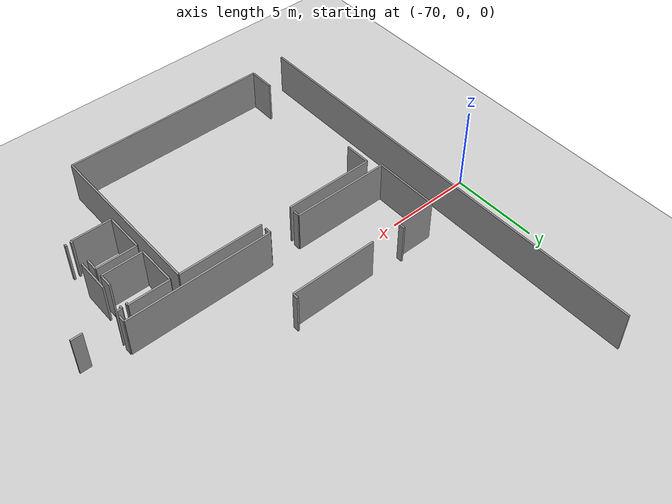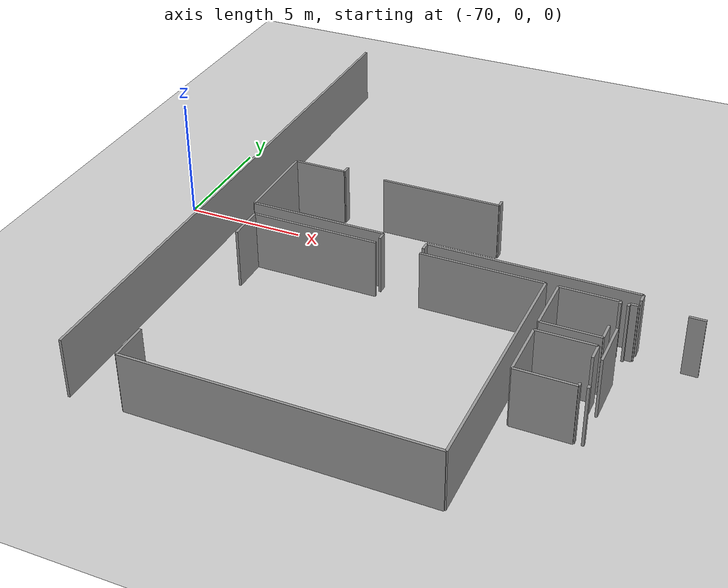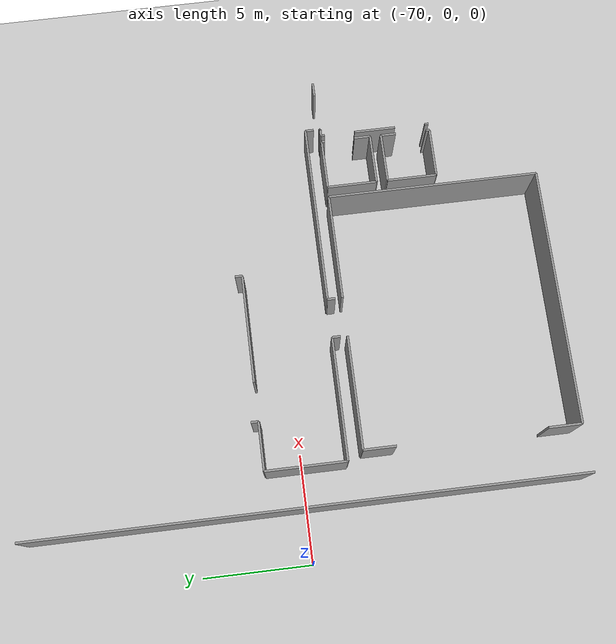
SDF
<sdf version="1.6">
 <world name="default">
  <model name="ground_plane">
   <static>1</static>
   <link name="link">
    <collision name="collision">
     <geometry><plane><normal>0 0 1</normal><size>100 100</size></plane></geometry>
     <surface><friction><ode><mu>100</mu><mu2>50</mu2></ode></friction></surface>
    </collision>
    <visual name="visual">
     <cast_shadows>0</cast_shadows>
     <geometry><plane><normal>0 0 1</normal><size>100 100</size></plane></geometry>
     <material>
      <script><uri>file://media/materials/scripts/gazebo.material</uri><name>Gazebo/Grey</name></script>
     </material>
    </visual>
   </link>
  </model>
  <model name="0510032198_A_40_1_106">
   <static>1</static>
   <link name="Wall_271">
    <collision name="Wall_271_Collision">
     <geometry><box><size>2.31815929563 0.1 2.5</size></box></geometry>
     <pose>1.15907964782 0 1.25 0 0 0</pose>
    </collision>
    <visual name="Wall_271_Visual">
     <pose>1.15907964782 0 1.25 0 0 0</pose>
     <geometry><box><size>2.31815929563 0.1 2.5</size></box></geometry>
     <material>
      <script><uri>file://media/materials/scripts/gazebo.material</uri><name>Gazebo/Grey</name></script>
      <ambient>1 1 1 1</ambient>
     </material>
    </visual>
    <pose>14.6627450482 -20.6023453481 0 0 0 1.57079632679</pose>
   </link>
   <link name="Wall_272">
    <collision name="Wall_272_Collision">
     <geometry><box><size>2.31193383222 0.1 2.5</size></box></geometry>
     <pose>1.15596691611 0 1.25 0 0 0</pose>
    </collision>
    <visual name="Wall_272_Visual">
     <pose>1.15596691611 0 1.25 0 0 0</pose>
     <geometry><box><size>2.31193383222 0.1 2.5</size></box></geometry>
     <material>
      <script><uri>file://media/materials/scripts/gazebo.material</uri><name>Gazebo/Grey</name></script>
      <ambient>1 1 1 1</ambient>
     </material>
    </visual>
    <pose>14.6627450482 -18.2841860524 0 0 0 0.0</pose>
   </link>
   <link name="Wall_273">
    <collision name="Wall_273_Collision">
     <geometry><box><size>0.707415924481 0.1 2.5</size></box></geometry>
     <pose>0.353707962241 0 1.25 0 0 0</pose>
    </collision>
    <visual name="Wall_273_Visual">
     <pose>0.353707962241 0 1.25 0 0 0</pose>
     <geometry><box><size>0.707415924481 0.1 2.5</size></box></geometry>
     <material>
      <script><uri>file://media/materials/scripts/gazebo.material</uri><name>Gazebo/Grey</name></script>
      <ambient>1 1 1 1</ambient>
     </material>
    </visual>
    <pose>16.9746788804 -18.2841860524 0 0 0 -1.57079632679</pose>
   </link>
   <link name="Wall_274">
    <collision name="Wall_274_Collision">
     <geometry><box><size>0.167071110038 0.1 2.5</size></box></geometry>
     <pose>0.0835355550191 0 1.25 0 0 0</pose>
    </collision>
    <visual name="Wall_274_Visual">
     <pose>0.0835355550191 0 1.25 0 0 0</pose>
     <geometry><box><size>0.167071110038 0.1 2.5</size></box></geometry>
     <material>
      <script><uri>file://media/materials/scripts/gazebo.material</uri><name>Gazebo/Grey</name></script>
      <ambient>1 1 1 1</ambient>
     </material>
    </visual>
    <pose>16.9746788804 -20.4519178239 0 0 0 -1.57079632679</pose>
   </link>
   <link name="Wall_275">
    <collision name="Wall_275_Collision">
     <geometry><box><size>2.31199373994 0.1 2.5</size></box></geometry>
     <pose>1.15599686997 0 1.25 0 0 0</pose>
    </collision>
    <visual name="Wall_275_Visual">
     <pose>1.15599686997 0 1.25 0 0 0</pose>
     <geometry><box><size>2.31199373994 0.1 2.5</size></box></geometry>
     <material>
      <script><uri>file://media/materials/scripts/gazebo.material</uri><name>Gazebo/Grey</name></script>
      <ambient>1 1 1 1</ambient>
     </material>
    </visual>
    <pose>16.9746788804 -20.6189889339 0 0 0 3.13439378911</pose>
   </link>
   <link name="Wall_276">
    <collision name="Wall_276_Collision">
     <geometry><box><size>2.32006504974 0.1 2.5</size></box></geometry>
     <pose>1.16003252487 0 1.25 0 0 0</pose>
    </collision>
    <visual name="Wall_276_Visual">
     <pose>1.16003252487 0 1.25 0 0 0</pose>
     <geometry><box><size>2.32006504974 0.1 2.5</size></box></geometry>
     <material>
      <script><uri>file://media/materials/scripts/gazebo.material</uri><name>Gazebo/Grey</name></script>
      <ambient>1 1 1 1</ambient>
     </material>
    </visual>
    <pose>14.6602040427 -17.7592143211 0 0 0 1.57079632679</pose>
   </link>
   <link name="Wall_277">
    <collision name="Wall_277_Collision">
     <geometry><box><size>2.33111842356 0.1 2.5</size></box></geometry>
     <pose>1.16555921178 0 1.25 0 0 0</pose>
    </collision>
    <visual name="Wall_277_Visual">
     <pose>1.16555921178 0 1.25 0 0 0</pose>
     <geometry><box><size>2.33111842356 0.1 2.5</size></box></geometry>
     <material>
      <script><uri>file://media/materials/scripts/gazebo.material</uri><name>Gazebo/Grey</name></script>
      <ambient>1 1 1 1</ambient>
     </material>
    </visual>
    <pose>14.6602040427 -15.4391492714 0 0 0 0.0</pose>
   </link>
   <link name="Wall_278">
    <collision name="Wall_278_Collision">
     <geometry><box><size>0.15474723348 0.1 2.5</size></box></geometry>
     <pose>0.0773736167401 0 1.25 0 0 0</pose>
    </collision>
    <visual name="Wall_278_Visual">
     <pose>0.0773736167401 0 1.25 0 0 0</pose>
     <geometry><box><size>0.15474723348 0.1 2.5</size></box></geometry>
     <material>
      <script><uri>file://media/materials/scripts/gazebo.material</uri><name>Gazebo/Grey</name></script>
      <ambient>1 1 1 1</ambient>
     </material>
    </visual>
    <pose>16.9913224663 -15.4391492714 0 0 0 -1.57079632679</pose>
   </link>
   <link name="Wall_279">
    <collision name="Wall_279_Collision">
     <geometry><box><size>0.751883520309 0.1 2.5</size></box></geometry>
     <pose>0.375941760154 0 1.25 0 0 0</pose>
    </collision>
    <visual name="Wall_279_Visual">
     <pose>0.375941760154 0 1.25 0 0 0</pose>
     <geometry><box><size>0.751883520309 0.1 2.5</size></box></geometry>
     <material>
      <script><uri>file://media/materials/scripts/gazebo.material</uri><name>Gazebo/Grey</name></script>
      <ambient>1 1 1 1</ambient>
     </material>
    </visual>
    <pose>16.9913224663 -17.0101259068 0 0 0 -1.57079632679</pose>
   </link>
   <link name="Wall_280">
    <collision name="Wall_280_Collision">
     <geometry><box><size>2.33112009928 0.1 2.5</size></box></geometry>
     <pose>1.16556004964 0 1.25 0 0 0</pose>
    </collision>
    <visual name="Wall_280_Visual">
     <pose>1.16556004964 0 1.25 0 0 0</pose>
     <geometry><box><size>2.33112009928 0.1 2.5</size></box></geometry>
     <material>
      <script><uri>file://media/materials/scripts/gazebo.material</uri><name>Gazebo/Grey</name></script>
      <ambient>1 1 1 1</ambient>
     </material>
    </visual>
    <pose>16.9913224663 -17.7620094271 0 0 0 3.1403936134</pose>
   </link>
   <link name="Wall_281">
    <collision name="Wall_281_Collision">
     <geometry><box><size>0.167198160312 0.1 2.5</size></box></geometry>
     <pose>0.083599080156 0 1.25 0 0 0</pose>
    </collision>
    <visual name="Wall_281_Visual">
     <pose>0.083599080156 0 1.25 0 0 0</pose>
     <geometry><box><size>0.167198160312 0.1 2.5</size></box></geometry>
     <material>
      <script><uri>file://media/materials/scripts/gazebo.material</uri><name>Gazebo/Grey</name></script>
      <ambient>1 1 1 1</ambient>
     </material>
    </visual>
    <pose>17.3014521846 -20.6135257721 0 0 0 1.57079632679</pose>
   </link>
   <link name="Wall_282">
    <collision name="Wall_282_Collision">
     <geometry><box><size>1.94285278685 0.1 2.5</size></box></geometry>
     <pose>0.971426393424 0 1.25 0 0 0</pose>
    </collision>
    <visual name="Wall_282_Visual">
     <pose>0.971426393424 0 1.25 0 0 0</pose>
     <geometry><box><size>1.94285278685 0.1 2.5</size></box></geometry>
     <material>
      <script><uri>file://media/materials/scripts/gazebo.material</uri><name>Gazebo/Grey</name></script>
      <ambient>1 1 1 1</ambient>
     </material>
    </visual>
    <pose>17.3014521846 -19.0030365015 0 0 0 1.57079632679</pose>
   </link>
   <link name="Wall_283">
    <collision name="Wall_283_Collision">
     <geometry><box><size>0.167071110038 0.1 2.5</size></box></geometry>
     <pose>0.0835355550191 0 1.25 0 0 0</pose>
    </collision>
    <visual name="Wall_283_Visual">
     <pose>0.0835355550191 0 1.25 0 0 0</pose>
     <geometry><box><size>0.167071110038 0.1 2.5</size></box></geometry>
     <material>
      <script><uri>file://media/materials/scripts/gazebo.material</uri><name>Gazebo/Grey</name></script>
      <ambient>1 1 1 1</ambient>
     </material>
    </visual>
    <pose>17.3014521846 -15.6179090066 0 0 0 1.57079632679</pose>
   </link>
   <link name="Wall_284">
    <collision name="Wall_284_Collision">
     <geometry><box><size>0.321945393792 0.1 2.5</size></box></geometry>
     <pose>0.160972696896 0 1.25 0 0 0</pose>
    </collision>
    <visual name="Wall_284_Visual">
     <pose>0.160972696896 0 1.25 0 0 0</pose>
     <geometry><box><size>0.321945393792 0.1 2.5</size></box></geometry>
     <material>
      <script><uri>file://media/materials/scripts/gazebo.material</uri><name>Gazebo/Grey</name></script>
      <ambient>1 1 1 1</ambient>
     </material>
    </visual>
    <pose>17.3014521846 -15.4508378966 0 0 0 0.0</pose>
   </link>
   <link name="Wall_285">
    <collision name="Wall_285_Collision">
     <geometry><box><size>0.0653038407298 0.1 2.5</size></box></geometry>
     <pose>0.0326519203649 0 1.25 0 0 0</pose>
    </collision>
    <visual name="Wall_285_Visual">
     <pose>0.0326519203649 0 1.25 0 0 0</pose>
     <geometry><box><size>0.0653038407298 0.1 2.5</size></box></geometry>
     <material>
      <script><uri>file://media/materials/scripts/gazebo.material</uri><name>Gazebo/Grey</name></script>
      <ambient>1 1 1 1</ambient>
     </material>
    </visual>
    <pose>17.6233975784 -15.4508378966 0 0 0 1.57079632679</pose>
   </link>
   <link name="Wall_286">
    <collision name="Wall_286_Collision">
     <geometry><box><size>0.638681726359 0.1 2.5</size></box></geometry>
     <pose>0.31934086318 0 1.25 0 0 0</pose>
    </collision>
    <visual name="Wall_286_Visual">
     <pose>0.31934086318 0 1.25 0 0 0</pose>
     <geometry><box><size>0.638681726359 0.1 2.5</size></box></geometry>
     <material>
      <script><uri>file://media/materials/scripts/gazebo.material</uri><name>Gazebo/Grey</name></script>
      <ambient>1 1 1 1</ambient>
     </material>
    </visual>
    <pose>19.4129006848 -15.3855340558 0 0 0 0.0</pose>
   </link>
   <link name="Wall_303">
    <collision name="Wall_303_Collision">
     <geometry><box><size>1.52460328552 0.1 2.5</size></box></geometry>
     <pose>0.76230164276 0 1.25 0 0 0</pose>
    </collision>
    <visual name="Wall_303_Visual">
     <pose>0.76230164276 0 1.25 0 0 0</pose>
     <geometry><box><size>1.52460328552 0.1 2.5</size></box></geometry>
     <material>
      <script><uri>file://media/materials/scripts/gazebo.material</uri><name>Gazebo/Grey</name></script>
      <ambient>1 1 1 1</ambient>
     </material>
    </visual>
    <pose>2.17942039665 -25.2485738607 0 0 0 1.57079632679</pose>
   </link>
   <link name="Wall_304">
    <collision name="Wall_304_Collision">
     <geometry><box><size>1.49144316406 0.1 2.5</size></box></geometry>
     <pose>0.74572158203 0 1.25 0 0 0</pose>
    </collision>
    <visual name="Wall_304_Visual">
     <pose>0.74572158203 0 1.25 0 0 0</pose>
     <geometry><box><size>1.49144316406 0.1 2.5</size></box></geometry>
     <material>
      <script><uri>file://media/materials/scripts/gazebo.material</uri><name>Gazebo/Grey</name></script>
      <ambient>1 1 1 1</ambient>
     </material>
    </visual>
    <pose>2.17942039665 -16.9195390616 0 0 0 1.57079632679</pose>
   </link>
   <link name="Wall_305">
    <collision name="Wall_305_Collision">
     <geometry><box><size>5.21897114688 0.1 2.5</size></box></geometry>
     <pose>2.60948557344 0 1.25 0 0 0</pose>
    </collision>
    <visual name="Wall_305_Visual">
     <pose>2.60948557344 0 1.25 0 0 0</pose>
     <geometry><box><size>5.21897114688 0.1 2.5</size></box></geometry>
     <material>
      <script><uri>file://media/materials/scripts/gazebo.material</uri><name>Gazebo/Grey</name></script>
      <ambient>1 1 1 1</ambient>
     </material>
    </visual>
    <pose>2.17942039665 -15.4280958975 0 0 0 0.0</pose>
   </link>
   <link name="Wall_306">
    <collision name="Wall_306_Collision">
     <geometry><box><size>4.96055088999 0.1 2.5</size></box></geometry>
     <pose>2.48027544499 0 1.25 0 0 0</pose>
    </collision>
    <visual name="Wall_306_Visual">
     <pose>2.48027544499 0 1.25 0 0 0</pose>
     <geometry><box><size>4.96055088999 0.1 2.5</size></box></geometry>
     <material>
      <script><uri>file://media/materials/scripts/gazebo.material</uri><name>Gazebo/Grey</name></script>
      <ambient>1 1 1 1</ambient>
     </material>
    </visual>
    <pose>9.21355880522 -15.4280958975 0 0 0 0.0</pose>
   </link>
   <link name="Wall_307">
    <collision name="Wall_307_Collision">
     <geometry><box><size>9.85859304527 0.1 2.5</size></box></geometry>
     <pose>4.92929652263 0 1.25 0 0 0</pose>
    </collision>
    <visual name="Wall_307_Visual">
     <pose>4.92929652263 0 1.25 0 0 0</pose>
     <geometry><box><size>9.85859304527 0.1 2.5</size></box></geometry>
     <material>
      <script><uri>file://media/materials/scripts/gazebo.material</uri><name>Gazebo/Grey</name></script>
      <ambient>1 1 1 1</ambient>
     </material>
    </visual>
    <pose>14.1741096952 -15.4280958975 0 0 0 -1.57079632679</pose>
   </link>
   <link name="Wall_308">
    <collision name="Wall_308_Collision">
     <geometry><box><size>11.9947498568 0.1 2.5</size></box></geometry>
     <pose>5.99737492842 0 1.25 0 0 0</pose>
    </collision>
    <visual name="Wall_308_Visual">
     <pose>5.99737492842 0 1.25 0 0 0</pose>
     <geometry><box><size>11.9947498568 0.1 2.5</size></box></geometry>
     <material>
      <script><uri>file://media/materials/scripts/gazebo.material</uri><name>Gazebo/Grey</name></script>
      <ambient>1 1 1 1</ambient>
     </material>
    </visual>
    <pose>14.1741096952 -25.2866889428 0 0 0 3.13841500114</pose>
   </link>
   <link name="Wall_309">
    <collision name="Wall_309_Collision">
     <geometry><box><size>3.7145688549 0.1 2.5</size></box></geometry>
     <pose>1.85728442745 0 1.25 0 0 0</pose>
    </collision>
    <visual name="Wall_309_Visual">
     <pose>1.85728442745 0 1.25 0 0 0</pose>
     <geometry><box><size>3.7145688549 0.1 2.5</size></box></geometry>
     <material>
      <script><uri>file://media/materials/scripts/gazebo.material</uri><name>Gazebo/Grey</name></script>
      <ambient>1 1 1 1</ambient>
     </material>
    </visual>
    <pose>1.77832268229 -14.7100077501 0 0 0 1.57079632679</pose>
   </link>
   <link name="Wall_310">
    <collision name="Wall_310_Collision">
     <geometry><box><size>2.21715432797 0.1 2.5</size></box></geometry>
     <pose>1.10857716398 0 1.25 0 0 0</pose>
    </collision>
    <visual name="Wall_310_Visual">
     <pose>1.10857716398 0 1.25 0 0 0</pose>
     <geometry><box><size>2.21715432797 0.1 2.5</size></box></geometry>
     <material>
      <script><uri>file://media/materials/scripts/gazebo.material</uri><name>Gazebo/Grey</name></script>
      <ambient>1 1 1 1</ambient>
     </material>
    </visual>
    <pose>1.77832268229 -10.9954388952 0 0 0 0.0</pose>
   </link>
   <link name="Wall_311">
    <collision name="Wall_311_Collision">
     <geometry><box><size>0.342527538147 0.1 2.5</size></box></geometry>
     <pose>0.171263769073 0 1.25 0 0 0</pose>
    </collision>
    <visual name="Wall_311_Visual">
     <pose>0.171263769073 0 1.25 0 0 0</pose>
     <geometry><box><size>0.342527538147 0.1 2.5</size></box></geometry>
     <material>
      <script><uri>file://media/materials/scripts/gazebo.material</uri><name>Gazebo/Grey</name></script>
      <ambient>1 1 1 1</ambient>
     </material>
    </visual>
    <pose>3.99547701025 -10.9954388952 0 0 0 1.57079632679</pose>
   </link>
   <link name="Wall_313">
    <collision name="Wall_313_Collision">
     <geometry><box><size>5.02458422798 0.1 2.5</size></box></geometry>
     <pose>2.51229211399 0 1.25 0 0 0</pose>
    </collision>
    <visual name="Wall_313_Visual">
     <pose>2.51229211399 0 1.25 0 0 0</pose>
     <geometry><box><size>5.02458422798 0.1 2.5</size></box></geometry>
     <material>
      <script><uri>file://media/materials/scripts/gazebo.material</uri><name>Gazebo/Grey</name></script>
      <ambient>1 1 1 1</ambient>
     </material>
    </visual>
    <pose>5.77773825103 -10.9869265268 0 0 0 0.0</pose>
   </link>
   <link name="Wall_314">
    <collision name="Wall_314_Collision">
     <geometry><box><size>0.337699627743 0.1 2.5</size></box></geometry>
     <pose>0.168849813871 0 1.25 0 0 0</pose>
    </collision>
    <visual name="Wall_314_Visual">
     <pose>0.168849813871 0 1.25 0 0 0</pose>
     <geometry><box><size>0.337699627743 0.1 2.5</size></box></geometry>
     <material>
      <script><uri>file://media/materials/scripts/gazebo.material</uri><name>Gazebo/Grey</name></script>
      <ambient>1 1 1 1</ambient>
     </material>
    </visual>
    <pose>10.802322479 -10.9869265268 0 0 0 1.57079632679</pose>
   </link>
   <link name="Wall_384">
    <collision name="Wall_384_Collision">
     <geometry><box><size>0.386868083701 0.1 2.5</size></box></geometry>
     <pose>0.19343404185 0 1.25 0 0 0</pose>
    </collision>
    <visual name="Wall_384_Visual">
     <pose>0.19343404185 0 1.25 0 0 0</pose>
     <geometry><box><size>0.386868083701 0.1 2.5</size></box></geometry>
     <material>
      <script><uri>file://media/materials/scripts/gazebo.material</uri><name>Gazebo/Grey</name></script>
      <ambient>1 1 1 1</ambient>
     </material>
    </visual>
    <pose>17.6378813096 -15.1258432962 0 0 0 1.57079632679</pose>
   </link>
   <link name="Wall_385">
    <collision name="Wall_385_Collision">
     <geometry><box><size>8.42012984538 0.1 2.5</size></box></geometry>
     <pose>4.21006492269 0 1.25 0 0 0</pose>
    </collision>
    <visual name="Wall_385_Visual">
     <pose>4.21006492269 0 1.25 0 0 0</pose>
     <geometry><box><size>8.42012984538 0.1 2.5</size></box></geometry>
     <material>
      <script><uri>file://media/materials/scripts/gazebo.material</uri><name>Gazebo/Grey</name></script>
      <ambient>1 1 1 1</ambient>
     </material>
    </visual>
    <pose>17.6378813096 -14.7389752125 0 0 0 3.14159265359</pose>
   </link>
   <link name="Wall_386">
    <collision name="Wall_386_Collision">
     <geometry><box><size>0.361585079216 0.1 2.5</size></box></geometry>
     <pose>0.180792539608 0 1.25 0 0 0</pose>
    </collision>
    <visual name="Wall_386_Visual">
     <pose>0.180792539608 0 1.25 0 0 0</pose>
     <geometry><box><size>0.361585079216 0.1 2.5</size></box></geometry>
     <material>
      <script><uri>file://media/materials/scripts/gazebo.material</uri><name>Gazebo/Grey</name></script>
      <ambient>1 1 1 1</ambient>
     </material>
    </visual>
    <pose>9.21775146425 -14.7389752125 0 0 0 -1.57079632679</pose>
   </link>
   <link name="Wall_387">
    <collision name="Wall_387_Collision">
     <geometry><box><size>0.376068810428 0.1 2.5</size></box></geometry>
     <pose>0.188034405214 0 1.25 0 0 0</pose>
    </collision>
    <visual name="Wall_387_Visual">
     <pose>0.188034405214 0 1.25 0 0 0</pose>
     <geometry><box><size>0.376068810428 0.1 2.5</size></box></geometry>
     <material>
      <script><uri>file://media/materials/scripts/gazebo.material</uri><name>Gazebo/Grey</name></script>
      <ambient>1 1 1 1</ambient>
     </material>
    </visual>
    <pose>7.41643268241 -15.1005602917 0 0 0 1.57079632679</pose>
   </link>
   <link name="Wall_388">
    <collision name="Wall_388_Collision">
     <geometry><box><size>5.63812860371 0.1 2.5</size></box></geometry>
     <pose>2.81906430186 0 1.25 0 0 0</pose>
    </collision>
    <visual name="Wall_388_Visual">
     <pose>2.81906430186 0 1.25 0 0 0</pose>
     <geometry><box><size>5.63812860371 0.1 2.5</size></box></geometry>
     <material>
      <script><uri>file://media/materials/scripts/gazebo.material</uri><name>Gazebo/Grey</name></script>
      <ambient>1 1 1 1</ambient>
     </material>
    </visual>
    <pose>7.41643268241 -14.7244914813 0 0 0 3.13902376094</pose>
   </link>
   <link name="Wall_391">
    <collision name="Wall_391_Collision">
     <geometry><box><size>25.3852799553 0.1 2.5</size></box></geometry>
     <pose>12.6926399776 0 1.25 0 0 0</pose>
    </collision>
    <visual name="Wall_391_Visual">
     <pose>12.6926399776 0 1.25 0 0 0</pose>
     <geometry><box><size>25.3852799553 0.1 2.5</size></box></geometry>
     <material>
      <script><uri>file://media/materials/scripts/gazebo.material</uri><name>Gazebo/Grey</name></script>
      <ambient>1 1 1 1</ambient>
     </material>
    </visual>
    <pose>0.0 -25.3852799553 0 0 0 1.57079632679</pose>
   </link>
   <pose>-67.6 12.6852799553 0 0 0 0</pose>
  </model>
 </world>
</sdf>
